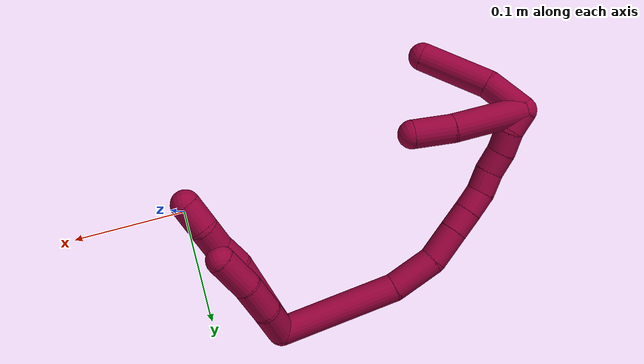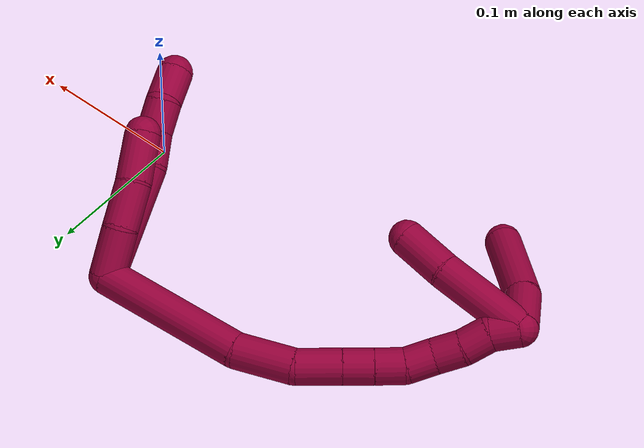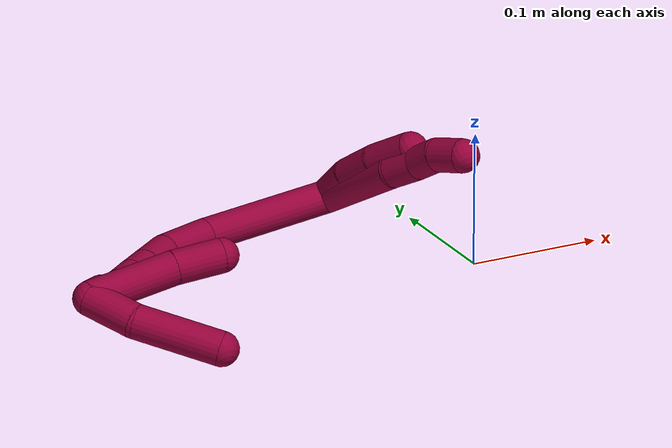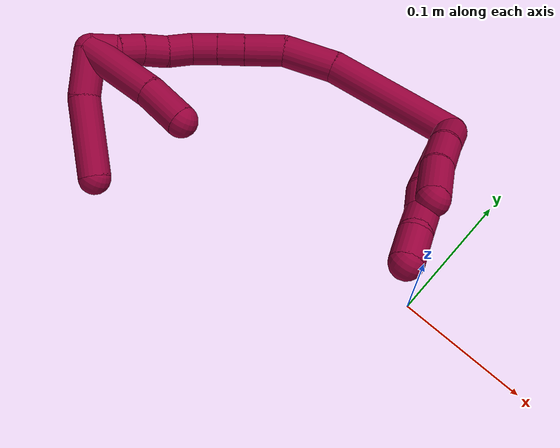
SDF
<sdf version="1.7">
 <world name="default">
  <model name="8">
   <static>0</static>
   <link name="8">
    <collision name="collision-cylinder-e_1_2_8">
     <pose>0.019516 -0.032034 -0.013531 1.97045 0.511414 0.751027</pose>
     <geometry><cylinder><radius>0.0125</radius><length>0.079753</length></cylinder></geometry>
     <surface>
      <friction><ode><mu>1.16</mu><mu2>1.16</mu2><slip1>0</slip1><slip2>0</slip2></ode></friction>
      <contact><ode><kp>1e+06</kp><kd>1</kd><max_vel>0</max_vel><min_depth>0.001</min_depth></ode></contact>
     </surface>
    </collision>
    <visual name="visual-cylinder-e_1_2_8">
     <pose>0.019516 -0.032034 -0.013531 1.97045 0.511414 0.751027</pose>
     <geometry><cylinder><radius>0.0125</radius><length>0.079753</length></cylinder></geometry>
     <material><ambient>0.584314 0 0.227451 1</ambient></material>
    </visual>
    <collision name="collision-cylinder-e_2_8_9">
     <pose>0.047037 -0.072078 -0.030899 2.01755 0.733532 1.09545</pose>
     <geometry><cylinder><radius>0.0125</radius><length>0.023912</length></cylinder></geometry>
     <surface>
      <friction><ode><mu>1.16</mu><mu2>1.16</mu2><slip1>0</slip1><slip2>0</slip2></ode></friction>
      <contact><ode><kp>1e+06</kp><kd>1</kd><max_vel>0</max_vel><min_depth>0.001</min_depth></ode></contact>
     </surface>
    </collision>
    <visual name="visual-cylinder-e_2_8_9">
     <pose>0.047037 -0.072078 -0.030899 2.01755 0.733532 1.09545</pose>
     <geometry><cylinder><radius>0.0125</radius><length>0.023912</length></cylinder></geometry>
     <material><ambient>0.584314 0 0.227451 1</ambient></material>
    </visual>
    <collision name="collision-cylinder-e_3_9_10">
     <pose>0.06103 -0.088813 -0.038108 1.93959 0.569384 0.806846</pose>
     <geometry><cylinder><radius>0.0125</radius><length>0.022215</length></cylinder></geometry>
     <surface>
      <friction><ode><mu>1.16</mu><mu2>1.16</mu2><slip1>0</slip1><slip2>0</slip2></ode></friction>
      <contact><ode><kp>1e+06</kp><kd>1</kd><max_vel>0</max_vel><min_depth>0.001</min_depth></ode></contact>
     </surface>
    </collision>
    <visual name="visual-cylinder-e_3_9_10">
     <pose>0.06103 -0.088813 -0.038108 1.93959 0.569384 0.806846</pose>
     <geometry><cylinder><radius>0.0125</radius><length>0.022215</length></cylinder></geometry>
     <material><ambient>0.584314 0 0.227451 1</ambient></material>
    </visual>
    <collision name="collision-cylinder-e_4_10_6">
     <pose>0.073675 -0.1048 -0.048438 2.33487 0.584789 1.22863</pose>
     <geometry><cylinder><radius>0.0125</radius><length>0.024119</length></cylinder></geometry>
     <surface>
      <friction><ode><mu>1.16</mu><mu2>1.16</mu2><slip1>0</slip1><slip2>0</slip2></ode></friction>
      <contact><ode><kp>1e+06</kp><kd>1</kd><max_vel>0</max_vel><min_depth>0.001</min_depth></ode></contact>
     </surface>
    </collision>
    <visual name="visual-cylinder-e_4_10_6">
     <pose>0.073675 -0.1048 -0.048438 2.33487 0.584789 1.22863</pose>
     <geometry><cylinder><radius>0.0125</radius><length>0.024119</length></cylinder></geometry>
     <material><ambient>0.584314 0 0.227451 1</ambient></material>
    </visual>
    <collision name="collision-cylinder-e_1_2_11">
     <pose>0.007999 -0.014734 -0.001177 1.65048 0.496046 0.535366</pose>
     <geometry><cylinder><radius>0.0125</radius><length>0.033612</length></cylinder></geometry>
     <surface>
      <friction><ode><mu>1.16</mu><mu2>1.16</mu2><slip1>0</slip1><slip2>0</slip2></ode></friction>
      <contact><ode><kp>1e+06</kp><kd>1</kd><max_vel>0</max_vel><min_depth>0.001</min_depth></ode></contact>
     </surface>
    </collision>
    <visual name="visual-cylinder-e_1_2_11">
     <pose>0.007999 -0.014734 -0.001177 1.65048 0.496046 0.535366</pose>
     <geometry><cylinder><radius>0.0125</radius><length>0.033612</length></cylinder></geometry>
     <material><ambient>0.584314 0 0.227451 1</ambient></material>
    </visual>
    <collision name="collision-cylinder-e_2_11_12">
     <pose>0.024561 -0.042184 -0.006462 1.88333 0.569849 0.765222</pose>
     <geometry><cylinder><radius>0.0125</radius><length>0.031744</length></cylinder></geometry>
     <surface>
      <friction><ode><mu>1.16</mu><mu2>1.16</mu2><slip1>0</slip1><slip2>0</slip2></ode></friction>
      <contact><ode><kp>1e+06</kp><kd>1</kd><max_vel>0</max_vel><min_depth>0.001</min_depth></ode></contact>
     </surface>
    </collision>
    <visual name="visual-cylinder-e_2_11_12">
     <pose>0.024561 -0.042184 -0.006462 1.88333 0.569849 0.765222</pose>
     <geometry><cylinder><radius>0.0125</radius><length>0.031744</length></cylinder></geometry>
     <material><ambient>0.584314 0 0.227451 1</ambient></material>
    </visual>
    <collision name="collision-cylinder-e_3_12_5">
     <pose>0.044228 -0.06699 -0.016102 1.99988 0.695854 1.02822</pose>
     <geometry><cylinder><radius>0.0125</radius><length>0.034644</length></cylinder></geometry>
     <surface>
      <friction><ode><mu>1.16</mu><mu2>1.16</mu2><slip1>0</slip1><slip2>0</slip2></ode></friction>
      <contact><ode><kp>1e+06</kp><kd>1</kd><max_vel>0</max_vel><min_depth>0.001</min_depth></ode></contact>
     </surface>
    </collision>
    <visual name="visual-cylinder-e_3_12_5">
     <pose>0.044228 -0.06699 -0.016102 1.99988 0.695854 1.02822</pose>
     <geometry><cylinder><radius>0.0125</radius><length>0.034644</length></cylinder></geometry>
     <material><ambient>0.584314 0 0.227451 1</ambient></material>
    </visual>
    <collision name="collision-cylinder-e_1_2_13">
     <pose>-0.049891 -0.015447 -0.005618 1.91962 -1.25254 -1.60314</pose>
     <geometry><cylinder><radius>0.0125</radius><length>0.105059</length></cylinder></geometry>
     <surface>
      <friction><ode><mu>1.16</mu><mu2>1.16</mu2><slip1>0</slip1><slip2>0</slip2></ode></friction>
      <contact><ode><kp>1e+06</kp><kd>1</kd><max_vel>0</max_vel><min_depth>0.001</min_depth></ode></contact>
     </surface>
    </collision>
    <visual name="visual-cylinder-e_1_2_13">
     <pose>-0.049891 -0.015447 -0.005618 1.91962 -1.25254 -1.60314</pose>
     <geometry><cylinder><radius>0.0125</radius><length>0.105059</length></cylinder></geometry>
     <material><ambient>0.584314 0 0.227451 1</ambient></material>
    </visual>
    <collision name="collision-cylinder-e_2_13_14">
     <pose>-0.117299 -0.040815 -0.01649 2.0578 -1.00085 -1.47485</pose>
     <geometry><cylinder><radius>0.0125</radius><length>0.04161</length></cylinder></geometry>
     <surface>
      <friction><ode><mu>1.16</mu><mu2>1.16</mu2><slip1>0</slip1><slip2>0</slip2></ode></friction>
      <contact><ode><kp>1e+06</kp><kd>1</kd><max_vel>0</max_vel><min_depth>0.001</min_depth></ode></contact>
     </surface>
    </collision>
    <visual name="visual-cylinder-e_2_13_14">
     <pose>-0.117299 -0.040815 -0.01649 2.0578 -1.00085 -1.47485</pose>
     <geometry><cylinder><radius>0.0125</radius><length>0.04161</length></cylinder></geometry>
     <material><ambient>0.584314 0 0.227451 1</ambient></material>
    </visual>
    <collision name="collision-cylinder-e_3_14_15">
     <pose>-0.1447 -0.060427 -0.029104 2.22037 -0.682137 -1.24185</pose>
     <geometry><cylinder><radius>0.0125</radius><length>0.031356</length></cylinder></geometry>
     <surface>
      <friction><ode><mu>1.16</mu><mu2>1.16</mu2><slip1>0</slip1><slip2>0</slip2></ode></friction>
      <contact><ode><kp>1e+06</kp><kd>1</kd><max_vel>0</max_vel><min_depth>0.001</min_depth></ode></contact>
     </surface>
    </collision>
    <visual name="visual-cylinder-e_3_14_15">
     <pose>-0.1447 -0.060427 -0.029104 2.22037 -0.682137 -1.24185</pose>
     <geometry><cylinder><radius>0.0125</radius><length>0.031356</length></cylinder></geometry>
     <material><ambient>0.584314 0 0.227451 1</ambient></material>
    </visual>
    <collision name="collision-cylinder-e_4_15_16">
     <pose>-0.161337 -0.076633 -0.041444 2.22339 -0.688964 -1.25567</pose>
     <geometry><cylinder><radius>0.0125</radius><length>0.021244</length></cylinder></geometry>
     <surface>
      <friction><ode><mu>1.16</mu><mu2>1.16</mu2><slip1>0</slip1><slip2>0</slip2></ode></friction>
      <contact><ode><kp>1e+06</kp><kd>1</kd><max_vel>0</max_vel><min_depth>0.001</min_depth></ode></contact>
     </surface>
    </collision>
    <visual name="visual-cylinder-e_4_15_16">
     <pose>-0.161337 -0.076633 -0.041444 2.22339 -0.688964 -1.25567</pose>
     <geometry><cylinder><radius>0.0125</radius><length>0.021244</length></cylinder></geometry>
     <material><ambient>0.584314 0 0.227451 1</ambient></material>
    </visual>
    <collision name="collision-cylinder-e_5_16_17">
     <pose>-0.174374 -0.089521 -0.05134 2.2279 -0.662819 -1.22154</pose>
     <geometry><cylinder><radius>0.0125</radius><length>0.020427</length></cylinder></geometry>
     <surface>
      <friction><ode><mu>1.16</mu><mu2>1.16</mu2><slip1>0</slip1><slip2>0</slip2></ode></friction>
      <contact><ode><kp>1e+06</kp><kd>1</kd><max_vel>0</max_vel><min_depth>0.001</min_depth></ode></contact>
     </surface>
    </collision>
    <visual name="visual-cylinder-e_5_16_17">
     <pose>-0.174374 -0.089521 -0.05134 2.2279 -0.662819 -1.22154</pose>
     <geometry><cylinder><radius>0.0125</radius><length>0.020427</length></cylinder></geometry>
     <material><ambient>0.584314 0 0.227451 1</ambient></material>
    </visual>
    <collision name="collision-cylinder-e_6_17_18">
     <pose>-0.184405 -0.103932 -0.06107 2.1103 -0.380481 -0.65503</pose>
     <geometry><cylinder><radius>0.0125</radius><length>0.020177</length></cylinder></geometry>
     <surface>
      <friction><ode><mu>1.16</mu><mu2>1.16</mu2><slip1>0</slip1><slip2>0</slip2></ode></friction>
      <contact><ode><kp>1e+06</kp><kd>1</kd><max_vel>0</max_vel><min_depth>0.001</min_depth></ode></contact>
     </surface>
    </collision>
    <visual name="visual-cylinder-e_6_17_18">
     <pose>-0.184405 -0.103932 -0.06107 2.1103 -0.380481 -0.65503</pose>
     <geometry><cylinder><radius>0.0125</radius><length>0.020177</length></cylinder></geometry>
     <material><ambient>0.584314 0 0.227451 1</ambient></material>
    </visual>
    <collision name="collision-cylinder-e_7_18_19">
     <pose>-0.192614 -0.120408 -0.06902 1.9268 -0.460147 -0.650062</pose>
     <geometry><cylinder><radius>0.0125</radius><length>0.020098</length></cylinder></geometry>
     <surface>
      <friction><ode><mu>1.16</mu><mu2>1.16</mu2><slip1>0</slip1><slip2>0</slip2></ode></friction>
      <contact><ode><kp>1e+06</kp><kd>1</kd><max_vel>0</max_vel><min_depth>0.001</min_depth></ode></contact>
     </surface>
    </collision>
    <visual name="visual-cylinder-e_7_18_19">
     <pose>-0.192614 -0.120408 -0.06902 1.9268 -0.460147 -0.650062</pose>
     <geometry><cylinder><radius>0.0125</radius><length>0.020098</length></cylinder></geometry>
     <material><ambient>0.584314 0 0.227451 1</ambient></material>
    </visual>
    <collision name="collision-cylinder-e_8_19_20">
     <pose>-0.199567 -0.137922 -0.075559 1.92937 -0.251477 -0.360764</pose>
     <geometry><cylinder><radius>0.0125</radius><length>0.020013</length></cylinder></geometry>
     <surface>
      <friction><ode><mu>1.16</mu><mu2>1.16</mu2><slip1>0</slip1><slip2>0</slip2></ode></friction>
      <contact><ode><kp>1e+06</kp><kd>1</kd><max_vel>0</max_vel><min_depth>0.001</min_depth></ode></contact>
     </surface>
    </collision>
    <visual name="visual-cylinder-e_8_19_20">
     <pose>-0.199567 -0.137922 -0.075559 1.92937 -0.251477 -0.360764</pose>
     <geometry><cylinder><radius>0.0125</radius><length>0.020013</length></cylinder></geometry>
     <material><ambient>0.584314 0 0.227451 1</ambient></material>
    </visual>
    <collision name="collision-cylinder-e_9_20_1">
     <pose>-0.207464 -0.154399 -0.08298 2.0683 -0.570688 -0.916262</pose>
     <geometry><cylinder><radius>0.0125</radius><length>0.020018</length></cylinder></geometry>
     <surface>
      <friction><ode><mu>1.16</mu><mu2>1.16</mu2><slip1>0</slip1><slip2>0</slip2></ode></friction>
      <contact><ode><kp>1e+06</kp><kd>1</kd><max_vel>0</max_vel><min_depth>0.001</min_depth></ode></contact>
     </surface>
    </collision>
    <visual name="visual-cylinder-e_9_20_1">
     <pose>-0.207464 -0.154399 -0.08298 2.0683 -0.570688 -0.916262</pose>
     <geometry><cylinder><radius>0.0125</radius><length>0.020018</length></cylinder></geometry>
     <material><ambient>0.584314 0 0.227451 1</ambient></material>
    </visual>
    <collision name="collision-cylinder-e_1_1_21">
     <pose>-0.20188 -0.164501 -0.101848 2.96172 0.629437 2.60113</pose>
     <geometry><cylinder><radius>0.0125</radius><length>0.03734</length></cylinder></geometry>
     <surface>
      <friction><ode><mu>1.16</mu><mu2>1.16</mu2><slip1>0</slip1><slip2>0</slip2></ode></friction>
      <contact><ode><kp>1e+06</kp><kd>1</kd><max_vel>0</max_vel><min_depth>0.001</min_depth></ode></contact>
     </surface>
    </collision>
    <visual name="visual-cylinder-e_1_1_21">
     <pose>-0.20188 -0.164501 -0.101848 2.96172 0.629437 2.60113</pose>
     <geometry><cylinder><radius>0.0125</radius><length>0.03734</length></cylinder></geometry>
     <material><ambient>0.584314 0 0.227451 1</ambient></material>
    </visual>
    <collision name="collision-cylinder-e_2_21_4">
     <pose>-0.167075 -0.167348 -0.137054 3.13433 0.863471 3.12584</pose>
     <geometry><cylinder><radius>0.0125</radius><length>0.06266</length></cylinder></geometry>
     <surface>
      <friction><ode><mu>1.16</mu><mu2>1.16</mu2><slip1>0</slip1><slip2>0</slip2></ode></friction>
      <contact><ode><kp>1e+06</kp><kd>1</kd><max_vel>0</max_vel><min_depth>0.001</min_depth></ode></contact>
     </surface>
    </collision>
    <visual name="visual-cylinder-e_2_21_4">
     <pose>-0.167075 -0.167348 -0.137054 3.13433 0.863471 3.12584</pose>
     <geometry><cylinder><radius>0.0125</radius><length>0.06266</length></cylinder></geometry>
     <material><ambient>0.584314 0 0.227451 1</ambient></material>
    </visual>
    <collision name="collision-cylinder-e_1_1_22">
     <pose>-0.181175 -0.156695 -0.08414 -1.0603 1.38822 -0.907689</pose>
     <geometry><cylinder><radius>0.0125</radius><length>0.064462</length></cylinder></geometry>
     <surface>
      <friction><ode><mu>1.16</mu><mu2>1.16</mu2><slip1>0</slip1><slip2>0</slip2></ode></friction>
      <contact><ode><kp>1e+06</kp><kd>1</kd><max_vel>0</max_vel><min_depth>0.001</min_depth></ode></contact>
     </surface>
    </collision>
    <visual name="visual-cylinder-e_1_1_22">
     <pose>-0.181175 -0.156695 -0.08414 -1.0603 1.38822 -0.907689</pose>
     <geometry><cylinder><radius>0.0125</radius><length>0.064462</length></cylinder></geometry>
     <material><ambient>0.584314 0 0.227451 1</ambient></material>
    </visual>
    <collision name="collision-cylinder-e_2_22_3">
     <pose>-0.131872 -0.149252 -0.081781 -1.78201 1.43587 -1.64818</pose>
     <geometry><cylinder><radius>0.0125</radius><length>0.035538</length></cylinder></geometry>
     <surface>
      <friction><ode><mu>1.16</mu><mu2>1.16</mu2><slip1>0</slip1><slip2>0</slip2></ode></friction>
      <contact><ode><kp>1e+06</kp><kd>1</kd><max_vel>0</max_vel><min_depth>0.001</min_depth></ode></contact>
     </surface>
    </collision>
    <visual name="visual-cylinder-e_2_22_3">
     <pose>-0.131872 -0.149252 -0.081781 -1.78201 1.43587 -1.64818</pose>
     <geometry><cylinder><radius>0.0125</radius><length>0.035538</length></cylinder></geometry>
     <material><ambient>0.584314 0 0.227451 1</ambient></material>
    </visual>
    <collision name="collision-sphere-3">
     <pose>-0.114265 -0.146915 -0.082283 0 -0 0</pose>
     <geometry><sphere><radius>0.0125</radius></sphere></geometry>
     <surface>
      <friction><ode><mu>1.16</mu><mu2>1.16</mu2><slip1>0</slip1><slip2>0</slip2></ode></friction>
      <contact><ode><kp>1e+06</kp><kd>1</kd><max_vel>0</max_vel><min_depth>0.001</min_depth></ode></contact>
     </surface>
    </collision>
    <visual name="visual-sphere-3">
     <pose>-0.114265 -0.146915 -0.082283 0 -0 0</pose>
     <geometry><sphere><radius>0.0125</radius></sphere></geometry>
     <material><ambient>0.584314 0 0.227451 1</ambient></material>
    </visual>
    <collision name="collision-sphere-22">
     <pose>-0.14948 -0.151589 -0.08128 0 -0 0</pose>
     <geometry><sphere><radius>0.0125</radius></sphere></geometry>
     <surface>
      <friction><ode><mu>1.16</mu><mu2>1.16</mu2><slip1>0</slip1><slip2>0</slip2></ode></friction>
      <contact><ode><kp>1e+06</kp><kd>1</kd><max_vel>0</max_vel><min_depth>0.001</min_depth></ode></contact>
     </surface>
    </collision>
    <visual name="visual-sphere-22">
     <pose>-0.14948 -0.151589 -0.08128 0 -0 0</pose>
     <geometry><sphere><radius>0.0125</radius></sphere></geometry>
     <material><ambient>0.584314 0 0.227451 1</ambient></material>
    </visual>
    <collision name="collision-sphere-4">
     <pose>-0.143261 -0.167496 -0.157412 0 -0 0</pose>
     <geometry><sphere><radius>0.0125</radius></sphere></geometry>
     <surface>
      <friction><ode><mu>1.16</mu><mu2>1.16</mu2><slip1>0</slip1><slip2>0</slip2></ode></friction>
      <contact><ode><kp>1e+06</kp><kd>1</kd><max_vel>0</max_vel><min_depth>0.001</min_depth></ode></contact>
     </surface>
    </collision>
    <visual name="visual-sphere-4">
     <pose>-0.143261 -0.167496 -0.157412 0 -0 0</pose>
     <geometry><sphere><radius>0.0125</radius></sphere></geometry>
     <material><ambient>0.584314 0 0.227451 1</ambient></material>
    </visual>
    <collision name="collision-sphere-21">
     <pose>-0.190889 -0.167201 -0.116697 0 -0 0</pose>
     <geometry><sphere><radius>0.0125</radius></sphere></geometry>
     <surface>
      <friction><ode><mu>1.16</mu><mu2>1.16</mu2><slip1>0</slip1><slip2>0</slip2></ode></friction>
      <contact><ode><kp>1e+06</kp><kd>1</kd><max_vel>0</max_vel><min_depth>0.001</min_depth></ode></contact>
     </surface>
    </collision>
    <visual name="visual-sphere-21">
     <pose>-0.190889 -0.167201 -0.116697 0 -0 0</pose>
     <geometry><sphere><radius>0.0125</radius></sphere></geometry>
     <material><ambient>0.584314 0 0.227451 1</ambient></material>
    </visual>
    <collision name="collision-sphere-1">
     <pose>-0.212871 -0.161801 -0.086999 0 -0 0</pose>
     <geometry><sphere><radius>0.0125</radius></sphere></geometry>
     <surface>
      <friction><ode><mu>1.16</mu><mu2>1.16</mu2><slip1>0</slip1><slip2>0</slip2></ode></friction>
      <contact><ode><kp>1e+06</kp><kd>1</kd><max_vel>0</max_vel><min_depth>0.001</min_depth></ode></contact>
     </surface>
    </collision>
    <visual name="visual-sphere-1">
     <pose>-0.212871 -0.161801 -0.086999 0 -0 0</pose>
     <geometry><sphere><radius>0.0125</radius></sphere></geometry>
     <material><ambient>0.584314 0 0.227451 1</ambient></material>
    </visual>
    <collision name="collision-sphere-11">
     <pose>0.015998 -0.029467 -0.002353 0 -0 0</pose>
     <geometry><sphere><radius>0.0125</radius></sphere></geometry>
     <surface>
      <friction><ode><mu>1.16</mu><mu2>1.16</mu2><slip1>0</slip1><slip2>0</slip2></ode></friction>
      <contact><ode><kp>1e+06</kp><kd>1</kd><max_vel>0</max_vel><min_depth>0.001</min_depth></ode></contact>
     </surface>
    </collision>
    <visual name="visual-sphere-11">
     <pose>0.015998 -0.029467 -0.002353 0 -0 0</pose>
     <geometry><sphere><radius>0.0125</radius></sphere></geometry>
     <material><ambient>0.584314 0 0.227451 1</ambient></material>
    </visual>
    <collision name="collision-sphere-6">
     <pose>0.080332 -0.112061 -0.055395 0 -0 0</pose>
     <geometry><sphere><radius>0.0125</radius></sphere></geometry>
     <surface>
      <friction><ode><mu>1.16</mu><mu2>1.16</mu2><slip1>0</slip1><slip2>0</slip2></ode></friction>
      <contact><ode><kp>1e+06</kp><kd>1</kd><max_vel>0</max_vel><min_depth>0.001</min_depth></ode></contact>
     </surface>
    </collision>
    <visual name="visual-sphere-6">
     <pose>0.080332 -0.112061 -0.055395 0 -0 0</pose>
     <geometry><sphere><radius>0.0125</radius></sphere></geometry>
     <material><ambient>0.584314 0 0.227451 1</ambient></material>
    </visual>
    <collision name="collision-sphere-10">
     <pose>0.067018 -0.09754 -0.041481 0 -0 0</pose>
     <geometry><sphere><radius>0.0125</radius></sphere></geometry>
     <surface>
      <friction><ode><mu>1.16</mu><mu2>1.16</mu2><slip1>0</slip1><slip2>0</slip2></ode></friction>
      <contact><ode><kp>1e+06</kp><kd>1</kd><max_vel>0</max_vel><min_depth>0.001</min_depth></ode></contact>
     </surface>
    </collision>
    <visual name="visual-sphere-10">
     <pose>0.067018 -0.09754 -0.041481 0 -0 0</pose>
     <geometry><sphere><radius>0.0125</radius></sphere></geometry>
     <material><ambient>0.584314 0 0.227451 1</ambient></material>
    </visual>
    <collision name="collision-sphere-9">
     <pose>0.055041 -0.080087 -0.034736 0 -0 0</pose>
     <geometry><sphere><radius>0.0125</radius></sphere></geometry>
     <surface>
      <friction><ode><mu>1.16</mu><mu2>1.16</mu2><slip1>0</slip1><slip2>0</slip2></ode></friction>
      <contact><ode><kp>1e+06</kp><kd>1</kd><max_vel>0</max_vel><min_depth>0.001</min_depth></ode></contact>
     </surface>
    </collision>
    <visual name="visual-sphere-9">
     <pose>0.055041 -0.080087 -0.034736 0 -0 0</pose>
     <geometry><sphere><radius>0.0125</radius></sphere></geometry>
     <material><ambient>0.584314 0 0.227451 1</ambient></material>
    </visual>
    <collision name="collision-sphere-2">
     <geometry><sphere><radius>0.0125</radius></sphere></geometry>
     <surface>
      <friction><ode><mu>1.16</mu><mu2>1.16</mu2><slip1>0</slip1><slip2>0</slip2></ode></friction>
      <contact><ode><kp>1e+06</kp><kd>1</kd><max_vel>0</max_vel><min_depth>0.001</min_depth></ode></contact>
     </surface>
    </collision>
    <visual name="visual-sphere-2">
     <geometry><sphere><radius>0.0125</radius></sphere></geometry>
     <material><ambient>0.584314 0 0.227451 1</ambient></material>
    </visual>
    <collision name="collision-sphere-19">
     <pose>-0.197077 -0.128847 -0.072158 0 -0 0</pose>
     <geometry><sphere><radius>0.0125</radius></sphere></geometry>
     <surface>
      <friction><ode><mu>1.16</mu><mu2>1.16</mu2><slip1>0</slip1><slip2>0</slip2></ode></friction>
      <contact><ode><kp>1e+06</kp><kd>1</kd><max_vel>0</max_vel><min_depth>0.001</min_depth></ode></contact>
     </surface>
    </collision>
    <visual name="visual-sphere-19">
     <pose>-0.197077 -0.128847 -0.072158 0 -0 0</pose>
     <geometry><sphere><radius>0.0125</radius></sphere></geometry>
     <material><ambient>0.584314 0 0.227451 1</ambient></material>
    </visual>
    <collision name="collision-sphere-8">
     <pose>0.039032 -0.064068 -0.027062 0 -0 0</pose>
     <geometry><sphere><radius>0.0125</radius></sphere></geometry>
     <surface>
      <friction><ode><mu>1.16</mu><mu2>1.16</mu2><slip1>0</slip1><slip2>0</slip2></ode></friction>
      <contact><ode><kp>1e+06</kp><kd>1</kd><max_vel>0</max_vel><min_depth>0.001</min_depth></ode></contact>
     </surface>
    </collision>
    <visual name="visual-sphere-8">
     <pose>0.039032 -0.064068 -0.027062 0 -0 0</pose>
     <geometry><sphere><radius>0.0125</radius></sphere></geometry>
     <material><ambient>0.584314 0 0.227451 1</ambient></material>
    </visual>
    <collision name="collision-sphere-12">
     <pose>0.033124 -0.0549 -0.010571 0 -0 0</pose>
     <geometry><sphere><radius>0.0125</radius></sphere></geometry>
     <surface>
      <friction><ode><mu>1.16</mu><mu2>1.16</mu2><slip1>0</slip1><slip2>0</slip2></ode></friction>
      <contact><ode><kp>1e+06</kp><kd>1</kd><max_vel>0</max_vel><min_depth>0.001</min_depth></ode></contact>
     </surface>
    </collision>
    <visual name="visual-sphere-12">
     <pose>0.033124 -0.0549 -0.010571 0 -0 0</pose>
     <geometry><sphere><radius>0.0125</radius></sphere></geometry>
     <material><ambient>0.584314 0 0.227451 1</ambient></material>
    </visual>
    <collision name="collision-sphere-5">
     <pose>0.055332 -0.079079 -0.021633 0 -0 0</pose>
     <geometry><sphere><radius>0.0125</radius></sphere></geometry>
     <surface>
      <friction><ode><mu>1.16</mu><mu2>1.16</mu2><slip1>0</slip1><slip2>0</slip2></ode></friction>
      <contact><ode><kp>1e+06</kp><kd>1</kd><max_vel>0</max_vel><min_depth>0.001</min_depth></ode></contact>
     </surface>
    </collision>
    <visual name="visual-sphere-5">
     <pose>0.055332 -0.079079 -0.021633 0 -0 0</pose>
     <geometry><sphere><radius>0.0125</radius></sphere></geometry>
     <material><ambient>0.584314 0 0.227451 1</ambient></material>
    </visual>
    <collision name="collision-sphere-13">
     <pose>-0.099783 -0.030894 -0.011236 0 -0 0</pose>
     <geometry><sphere><radius>0.0125</radius></sphere></geometry>
     <surface>
      <friction><ode><mu>1.16</mu><mu2>1.16</mu2><slip1>0</slip1><slip2>0</slip2></ode></friction>
      <contact><ode><kp>1e+06</kp><kd>1</kd><max_vel>0</max_vel><min_depth>0.001</min_depth></ode></contact>
     </surface>
    </collision>
    <visual name="visual-sphere-13">
     <pose>-0.099783 -0.030894 -0.011236 0 -0 0</pose>
     <geometry><sphere><radius>0.0125</radius></sphere></geometry>
     <material><ambient>0.584314 0 0.227451 1</ambient></material>
    </visual>
    <collision name="collision-sphere-14">
     <pose>-0.134816 -0.050736 -0.021743 0 -0 0</pose>
     <geometry><sphere><radius>0.0125</radius></sphere></geometry>
     <surface>
      <friction><ode><mu>1.16</mu><mu2>1.16</mu2><slip1>0</slip1><slip2>0</slip2></ode></friction>
      <contact><ode><kp>1e+06</kp><kd>1</kd><max_vel>0</max_vel><min_depth>0.001</min_depth></ode></contact>
     </surface>
    </collision>
    <visual name="visual-sphere-14">
     <pose>-0.134816 -0.050736 -0.021743 0 -0 0</pose>
     <geometry><sphere><radius>0.0125</radius></sphere></geometry>
     <material><ambient>0.584314 0 0.227451 1</ambient></material>
    </visual>
    <collision name="collision-sphere-15">
     <pose>-0.154584 -0.070118 -0.036465 0 -0 0</pose>
     <geometry><sphere><radius>0.0125</radius></sphere></geometry>
     <surface>
      <friction><ode><mu>1.16</mu><mu2>1.16</mu2><slip1>0</slip1><slip2>0</slip2></ode></friction>
      <contact><ode><kp>1e+06</kp><kd>1</kd><max_vel>0</max_vel><min_depth>0.001</min_depth></ode></contact>
     </surface>
    </collision>
    <visual name="visual-sphere-15">
     <pose>-0.154584 -0.070118 -0.036465 0 -0 0</pose>
     <geometry><sphere><radius>0.0125</radius></sphere></geometry>
     <material><ambient>0.584314 0 0.227451 1</ambient></material>
    </visual>
    <collision name="collision-sphere-16">
     <pose>-0.16809 -0.083147 -0.046423 0 -0 0</pose>
     <geometry><sphere><radius>0.0125</radius></sphere></geometry>
     <surface>
      <friction><ode><mu>1.16</mu><mu2>1.16</mu2><slip1>0</slip1><slip2>0</slip2></ode></friction>
      <contact><ode><kp>1e+06</kp><kd>1</kd><max_vel>0</max_vel><min_depth>0.001</min_depth></ode></contact>
     </surface>
    </collision>
    <visual name="visual-sphere-16">
     <pose>-0.16809 -0.083147 -0.046423 0 -0 0</pose>
     <geometry><sphere><radius>0.0125</radius></sphere></geometry>
     <material><ambient>0.584314 0 0.227451 1</ambient></material>
    </visual>
    <collision name="collision-sphere-17">
     <pose>-0.180659 -0.095896 -0.056258 0 -0 0</pose>
     <geometry><sphere><radius>0.0125</radius></sphere></geometry>
     <surface>
      <friction><ode><mu>1.16</mu><mu2>1.16</mu2><slip1>0</slip1><slip2>0</slip2></ode></friction>
      <contact><ode><kp>1e+06</kp><kd>1</kd><max_vel>0</max_vel><min_depth>0.001</min_depth></ode></contact>
     </surface>
    </collision>
    <visual name="visual-sphere-17">
     <pose>-0.180659 -0.095896 -0.056258 0 -0 0</pose>
     <geometry><sphere><radius>0.0125</radius></sphere></geometry>
     <material><ambient>0.584314 0 0.227451 1</ambient></material>
    </visual>
    <collision name="collision-sphere-18">
     <pose>-0.188152 -0.111968 -0.065881 0 -0 0</pose>
     <geometry><sphere><radius>0.0125</radius></sphere></geometry>
     <surface>
      <friction><ode><mu>1.16</mu><mu2>1.16</mu2><slip1>0</slip1><slip2>0</slip2></ode></friction>
      <contact><ode><kp>1e+06</kp><kd>1</kd><max_vel>0</max_vel><min_depth>0.001</min_depth></ode></contact>
     </surface>
    </collision>
    <visual name="visual-sphere-18">
     <pose>-0.188152 -0.111968 -0.065881 0 -0 0</pose>
     <geometry><sphere><radius>0.0125</radius></sphere></geometry>
     <material><ambient>0.584314 0 0.227451 1</ambient></material>
    </visual>
    <collision name="collision-sphere-20">
     <pose>-0.202057 -0.146997 -0.07896 0 -0 0</pose>
     <geometry><sphere><radius>0.0125</radius></sphere></geometry>
     <surface>
      <friction><ode><mu>1.16</mu><mu2>1.16</mu2><slip1>0</slip1><slip2>0</slip2></ode></friction>
      <contact><ode><kp>1e+06</kp><kd>1</kd><max_vel>0</max_vel><min_depth>0.001</min_depth></ode></contact>
     </surface>
    </collision>
    <visual name="visual-sphere-20">
     <pose>-0.202057 -0.146997 -0.07896 0 -0 0</pose>
     <geometry><sphere><radius>0.0125</radius></sphere></geometry>
     <material><ambient>0.584314 0 0.227451 1</ambient></material>
    </visual>
    <inertial>
     <pose>-0.084487 -0.085344 -0.047023 0 -0 0</pose>
     <mass>0.75</mass>
     <inertia><ixx>2.8e-05</ixx><ixy>0</ixy><ixz>0</ixz><iyy>0.000126</iyy><iyz>0</iyz><izz>9.7e-05</izz></inertia>
    </inertial>
   </link>
   <pose>-0.058181 0.122036 0.019427 -0.866072 -0.233244 -0.163533</pose>
  </model>
 </world>
</sdf>
